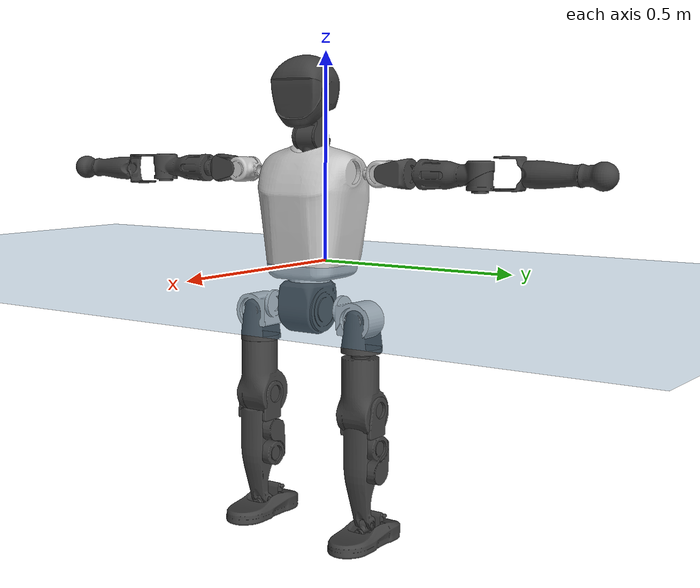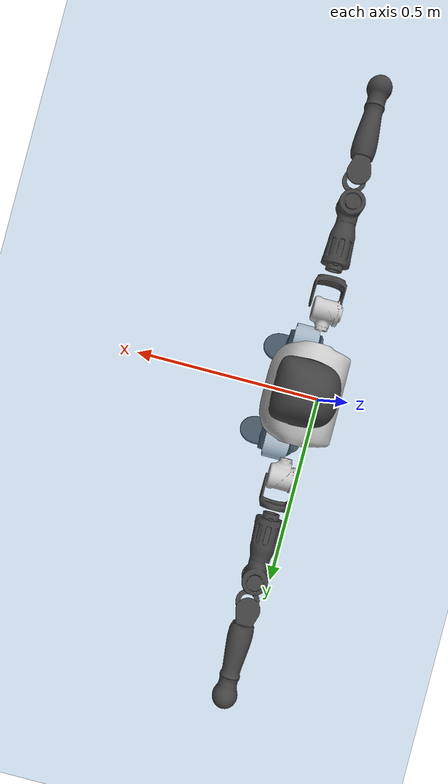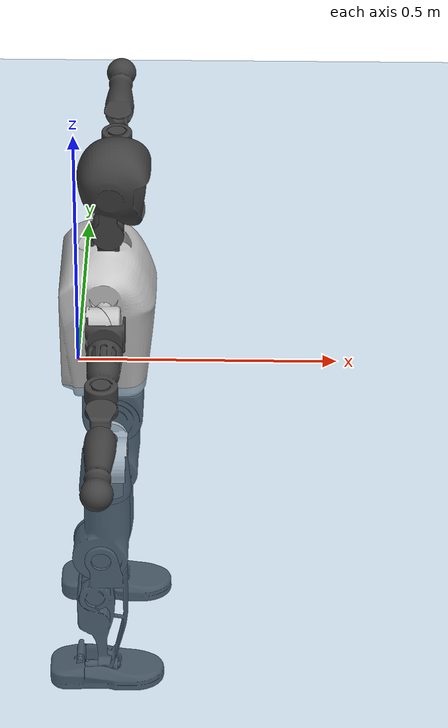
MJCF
<mujoco model="T1">
  <compiler angle="radian" assetdir="assets" balanceinertia="true" inertiafromgeom="false"/>

  <option timestep="0.005" density="1.2" viscosity="2e-05"/>

  <size nkey="1"/>

  <visual>
    <quality shadowsize="8192"/>
    <map shadowclip="0.5"/>
  </visual>

  <default>
    <default class="/">
      <joint armature="0.01" damping="0.01" frictionloss="0.1"/>
      <geom contype="0" conaffinity="0" group="1" solref="-1000 -80"/>
      <site size="0.01 0.005 0.005" group="5"/>
      <general forcelimited="true" biastype="affine" gainprm="25" biasprm="0 -25 -0.6"/>
      <default class="t1">
        <geom rgba="0.25 0.25 0.25 1"/>
        <default class="visual">
          <geom type="mesh" group="2"/>
        </default>
        <default class="collision">
          <geom group="3"/>
        </default>
        <default class="foot">
          <geom size="0.1115 0.05 0.015" type="box" condim="6" group="4" priority="1" solimp="0.015 1 0.015"/>
        </default>
        <default class="reward_collision_sphere">
          <geom group="5" rgba="1 0 0 1"/>
        </default>
      </default>
    </default>
  </default>

  <asset>
    <texture type="skybox" colorspace="auto" name="//unnamed_texture_0" builtin="gradient" rgb1="0.95 0.95 0.95" rgb2="0.95 0.95 0.95" width="100" height="600"/>
    <texture type="2d" colorspace="auto" name="texplane" builtin="checker" rgb1="0.345 0.575 0.748" rgb2="0.345 0.575 0.748" markrgb="1 1 1" width="512" height="512"/>
    <material name="MatPlane" class="/" texture="texplane" texuniform="true" texrepeat="2 2" specular="0.9"/>
    <mesh name="Trunk" class="/" file="Trunk.stl"/>
    <mesh name="H1" class="/" file="H1.stl"/>
    <mesh name="H2" class="/" file="H2.stl"/>
    <mesh name="AL1" class="/" file="AL1.stl"/>
    <mesh name="AL2" class="/" file="AL2.stl"/>
    <mesh name="AL3" class="/" file="AL3.stl"/>
    <mesh name="left_hand_link" class="/" file="left_hand_link.stl"/>
    <mesh name="AR1" class="/" file="AR1.stl"/>
    <mesh name="AR2" class="/" file="AR2.stl"/>
    <mesh name="AR3" class="/" file="AR3.stl"/>
    <mesh name="right_hand_link" class="/" file="right_hand_link.stl"/>
    <mesh name="Waist" class="/" file="Waist.stl"/>
    <mesh name="Hip_Pitch_Left" class="/" file="Hip_Pitch_Left.stl"/>
    <mesh name="Hip_Roll_Left" class="/" file="Hip_Roll_Left.stl"/>
    <mesh name="Hip_Yaw_Left" class="/" file="Hip_Yaw_Left.stl"/>
    <mesh name="Shank_Left" class="/" file="Shank_Left.stl"/>
    <mesh name="Ankle_Cross_Left" class="/" file="Ankle_Cross_Left.stl"/>
    <mesh name="left_foot_link" class="/" file="left_foot_link.stl"/>
    <mesh name="Hip_Pitch_Right" class="/" file="Hip_Pitch_Right.stl"/>
    <mesh name="Hip_Roll_Right" class="/" file="Hip_Roll_Right.stl"/>
    <mesh name="Hip_Yaw_Right" class="/" file="Hip_Yaw_Right.stl"/>
    <mesh name="Shank_Right" class="/" file="Shank_Right.stl"/>
    <mesh name="Ankle_Cross_Right" class="/" file="Ankle_Cross_Right.stl"/>
    <mesh name="right_foot_link" class="/" file="right_foot_link.stl"/>
  </asset>

  <worldbody>
    <geom name="floor" class="/" size="100 100 0.125" type="plane" group="0" material="MatPlane"/>
    <light name="toplight_shadow" class="/" pos="0 0 5" dir="0.0990148 0.0990148 -0.990148" type="directional" ambient="0.04 0.04 0.04" diffuse="0.55 0.55 0.55" specular="0.12 0.12 0.12"/>
    <light name="toplight_fill" class="/" pos="0 0 5" dir="0.0990148 0.0990148 -0.990148" type="directional" castshadow="false" ambient="0.04 0.04 0.04" diffuse="0.3 0.3 0.3" specular="0.08 0.08 0.08"/>
    <body name="trunk" childclass="t1" pos="4.18462e-07 -0.00120931 -0.0015025" quat="1 0.000140001 -0.000279917 9.15234e-05">
      <inertial pos="0.0549965 -0.00671359 0.0991545" quat="0.999987 -0.00199091 -0.00254192 -0.00406983" mass="18.2745" diaginertia="0.104428 0.51435 0.0507867"/>
      <joint name="//unnamed_joint_0" type="free" armature="0" damping="0" frictionloss="0"/>
      <geom name="//unnamed_geom_1" class="visual" rgba="0.76 0.76 0.76 1" mesh="Trunk"/>
      <geom name="//unnamed_geom_2" class="collision" size="0.0868675 0.115823 0.173735" pos="0.0615853 0 0.118515" type="box"/>
      <geom name="//unnamed_geom_3" class="reward_collision_sphere" size="0.133197" pos="0.0615853 0 0.0987624"/>
      <geom name="//unnamed_geom_4" class="reward_collision_sphere" size="0.0173735" pos="0.0615853 0.124156 0"/>
      <geom name="//unnamed_geom_5" class="reward_collision_sphere" size="0.0173735" pos="0.0615853 -0.124156 0"/>
      <geom name="//unnamed_geom_6" class="reward_collision_sphere" size="0.0173735" pos="0.0615853 0.15629 0.177772"/>
      <geom name="//unnamed_geom_7" class="reward_collision_sphere" size="0.0173735" pos="0.0615853 -0.15629 0.177772"/>
      <site name="imu" pos="0.00323021 -0.00111772 0.0101412" size="0.0115823"/>
      <camera name="track" pos="0 -2.92131 0" quat="0.707107 0.707107 0 0" mode="trackcom"/>
      <camera name="ego_camera" pos="0.125223 0 0.414802" quat="-0.5 -0.5 0.5 0.5"/>
      <body name="H1" pos="0.0623364 0.00388838 0.23538" quat="1 2.73525e-05 -2.91564e-05 0.000141372">
        <inertial pos="-0.00165119 -0.00886591 0.0543975" quat="0.77243 0.000127323 -0.00888275 0.635038" mass="0.699746" diaginertia="0.000287817 0.00150009 0.000138078"/>
        <joint name="AAHead_yaw" pos="0 0 0" axis="0.000212786 0.004178 0.999991" range="-1.56144 1.6688" armature="0.0104567" damping="0" frictionloss="0.157758"/>
        <geom name="//unnamed_geom_8" class="visual" mesh="H1"/>
        <body name="H2" pos="0.00145813 -0.00141866 0.064614" quat="1 -0.000537712 0.000173835 -0.000473123">
          <inertial pos="0.00579283 0.00692361 0.0960312" quat="0.988051 0.122573 -0.0538483 -0.0763674" mass="0.986967" diaginertia="0.00231683 0.0129228 0.00159257"/>
          <joint name="Head_pitch" pos="0 0 0" axis="-0.00779343 -0.999949 0.00645332" range="-1.24989 0.36573" armature="0.0120261" damping="0.00270422" frictionloss="0.124372"/>
          <geom name="//unnamed_geom_9" class="visual" mesh="H2"/>
          <geom name="//unnamed_geom_10" class="collision" size="0.0926586" pos="0.0102642 0 0.108639"/>
          <geom name="//unnamed_geom_11" class="reward_collision_sphere" size="0.104241" pos="0.0205284 0 0.0987624"/>
        </body>
      </body>
      <body name="AL1" pos="0.0610766 0.158142 0.216706" quat="0.999997 -0.000695078 0.000678769 0.00226617">
        <inertial pos="-0.00139588 0.0652403 -0.000969417" quat="0.49639 0.514977 -0.487782 0.500465" mass="0.805004" diaginertia="0.00156976 0.00798249 0.000278899"/>
        <joint name="Left_Shoulder_Pitch" pos="0 0 0" axis="0.00111623 0.999999 -0.000846284" range="-3.25724 1.14422" armature="0.0114362" damping="0" frictionloss="0.116661"/>
        <geom name="//unnamed_geom_12" class="visual" rgba="0.76 0.76 0.76 1" mesh="AL1"/>
        <body name="AL2" pos="0.00100097 0.0650679 0.00174183" quat="1 0.000173653 0.000498348 -0.000778567">
          <inertial pos="-0.00111901 0.0489459 -0.000534652" quat="0.491906 0.536982 -0.467222 0.50138" mass="0.255499" diaginertia="0.000471183 0.00234136 0.000159285"/>
          <joint name="Left_Shoulder_Roll" pos="0 0 0" axis="-0.999964 0.00417358 -0.00739871" range="-1.57009 1.74837" armature="0.01314" damping="0.00982159" frictionloss="0.102714"/>
          <geom name="//unnamed_geom_13" class="visual" mesh="AL2"/>
          <body name="AL3" pos="0.000588009 0.081412 -5.74267e-05" quat="1 0.000328373 -0.000396723 8.39356e-05">
            <inertial pos="0.00555935 0.126261 0.000798685" quat="0.704663 0.709502 9.45582e-06 -0.0075971" mass="1.46615" diaginertia="0.0136766 0.0836841 0.000570677"/>
            <joint name="Left_Elbow_Pitch" pos="0 0 0" axis="0.000473544 -1 -0.00062683" range="-2.22919 2.16339" armature="0.00993168" damping="0.00180978" frictionloss="0.112669"/>
            <geom name="//unnamed_geom_14" class="visual" mesh="AL3"/>
            <geom name="//unnamed_geom_15" class="collision" size="0.034747 0.0868675" pos="0 0.0730326 0" quat="0.707105 0.707108 0 0" type="cylinder"/>
            <geom name="//unnamed_geom_16" class="reward_collision_sphere" size="0.0416964"/>
            <body name="left_hand_link" pos="0.00043071 0.209718 0.00610395" quat="0.999999 -0.000462768 0.000989264 0.000509364">
              <inertial pos="0.00119362 0.157671 0.00248958" quat="0.703757 0.710404 0.00707556 -0.00112585" mass="0.52543" diaginertia="0.00973649 0.0536642 0.000196874"/>
              <joint name="Left_Elbow_Yaw" pos="0 0 0" axis="0.00268564 -0.00501793 0.999984" range="-2.33757 -0.0239099" armature="0.0117359" damping="0.0419422" frictionloss="0.097894"/>
              <geom name="//unnamed_geom_17" class="visual" mesh="left_hand_link"/>
              <geom name="//unnamed_geom_18" class="collision" size="0.034747 0.101345" pos="0 0.189885 0" quat="0.707105 0.707108 0 0" type="cylinder"/>
              <geom name="//unnamed_geom_19" class="reward_collision_sphere" size="0.0579116"/>
              <geom name="//unnamed_geom_20" class="reward_collision_sphere" size="0.0405381" pos="0 0.160672 0"/>
              <geom name="//unnamed_geom_21" class="reward_collision_sphere" size="0.0405381" pos="0 0.31404 0"/>
            </body>
          </body>
        </body>
      </body>
      <body name="AR1" pos="0.0599284 -0.154332 0.219338" quat="1 0.000508387 7.12045e-05 0.000314899">
        <inertial pos="0.00023098 -0.0656861 0.00540822" quat="0.505411 0.475398 -0.521275 0.496819" mass="0.791955" diaginertia="0.00157288 0.00871892 0.000271367"/>
        <joint name="Right_Shoulder_Pitch" pos="0 0 0" axis="-0.000876406 -0.999997 0.00222902" range="-1.21656 3.30615" armature="0.0126392" damping="0.0317211" frictionloss="0.150167"/>
        <geom name="//unnamed_geom_22" class="visual" rgba="0.76 0.76 0.76 1" mesh="AR1"/>
        <body name="AR2" pos="0.00566535 -0.0688399 0.00204314" quat="1 -0.000223675 -0.000198242 -0.000107063">
          <inertial pos="0.00459099 -0.0486544 0.00282311" quat="0.513723 0.504225 -0.490764 0.490913" mass="0.258985" diaginertia="0.000459646 0.00240239 0.000165974"/>
          <joint name="Right_Shoulder_Roll" pos="0 0 0" axis="-0.999918 0.0111396 -0.00627395" range="-1.74155 1.56487" armature="0.0115808" damping="0.0406866" frictionloss="0.127476"/>
          <geom name="//unnamed_geom_23" class="visual" mesh="AR2"/>
          <body name="AR3" pos="0.00106135 -0.0871803 -0.000945965" quat="1 0.000460837 0.000172808 -0.000184054">
            <inertial pos="0.00168879 -0.126538 -0.00201501" quat="0.708274 0.705903 0.00159729 0.00689361" mass="1.56151" diaginertia="0.0145786 0.0908795 0.000567377"/>
            <joint name="Right_Elbow_Pitch" pos="0 0 0" axis="0.00105273 0.999979 -0.00646256" range="-2.31742 2.29982" armature="0.0120711" damping="0.0059755" frictionloss="0.129248"/>
            <geom name="//unnamed_geom_24" class="visual" mesh="AR3"/>
            <geom name="//unnamed_geom_25" class="collision" size="0.034747 0.0868675" pos="0 -0.0730326 0" quat="0.707105 0.707108 0 0" type="cylinder"/>
            <geom name="//unnamed_geom_26" class="reward_collision_sphere" size="0.0416964"/>
            <body name="right_hand_link" pos="0.00304322 -0.217204 -0.0064652" quat="1 0.000145553 0.000754921 -0.000101723">
              <inertial pos="0.00111338 -0.161991 0.00163521" quat="0.700077 0.714035 -0.00600554 -0.00313082" mass="0.493492" diaginertia="0.00949953 0.055221 0.00020009"/>
              <joint name="Right_Elbow_Yaw" pos="0 0 0" axis="-0.000531942 0.00015197 1" range="-0.0317926 2.43106" armature="0.0104925" damping="0.0237684" frictionloss="0.0837805"/>
              <geom name="//unnamed_geom_27" class="visual" mesh="right_hand_link"/>
              <geom name="//unnamed_geom_28" class="collision" size="0.034747 0.101345" pos="0 -0.189885 0" quat="0.707105 0.707108 0 0" type="cylinder"/>
              <geom name="//unnamed_geom_29" class="reward_collision_sphere" size="0.0579116"/>
              <geom name="//unnamed_geom_30" class="reward_collision_sphere" size="0.0405381" pos="0 -0.160672 0"/>
              <geom name="//unnamed_geom_31" class="reward_collision_sphere" size="0.0405381" pos="0 -0.31404 0"/>
            </body>
          </body>
        </body>
      </body>
      <body name="Waist" pos="0.0666601 -0.0036968 -0.107859" quat="1 0.000225515 -0.000464145 -0.000430609">
        <inertial pos="0.00987403 0.00207383 0.00990481" quat="0.98376 -0.00175474 -0.179299 -0.00809741" mass="4.18069" diaginertia="0.00668208 0.0349469 0.00457338"/>
        <joint name="Waist" pos="0 0 0" axis="-0.00374158 0.00701179 0.999968" range="-1.55907 1.564" armature="0.0105151" damping="0.00995084" frictionloss="0.113511"/>
        <geom name="//unnamed_geom_32" class="visual" mesh="Waist"/>
        <body name="Hip_Pitch_Left" pos="0.0032474 0.154026 0.00449612" quat="0.999999 0.000498823 -0.00136896 6.01299e-05">
          <inertial pos="-0.00020028 -0.0138859 -0.0198836" quat="0.975799 0.218255 0.0132959 0.00232711" mass="1.47231" diaginertia="0.00203342 0.00947154 0.00116632"/>
          <joint name="Left_Hip_Pitch" pos="0 0 0" axis="0.00250398 0.999989 0.00391262" range="-1.79599 1.46415" armature="0.00813511" damping="0.0100366" frictionloss="0.123373"/>
          <geom name="//unnamed_geom_33" class="visual" rgba="0.76 0.76 0.76 1" mesh="Hip_Pitch_Left"/>
          <body name="Hip_Roll_Left" pos="-0.00516549 -0.000232493 -0.0188446" quat="0.999999 0.000451064 0.00109436 -0.000351703">
            <inertial pos="0.00122986 0.00078501 -0.0527793" quat="0.702237 -0.0177424 0.0212463 0.711405" mass="0.652689" diaginertia="0.00210498 0.0102229 0.000486902"/>
            <joint name="Left_Hip_Roll" pos="0 0 0" axis="-0.999801 0.0198442 -0.00186747" range="-1.5642 0.243672" armature="0.00869748" damping="0" frictionloss="0.119405"/>
            <geom name="//unnamed_geom_34" class="visual" mesh="Hip_Roll_Left"/>
            <geom name="//unnamed_geom_35" class="reward_collision_sphere" size="0.0637028"/>
            <body name="Hip_Yaw_Left" pos="0.00197796 -0.000960655 -0.0886044" quat="0.999999 0.000593979 -0.000301239 0.00111912">
              <inertial pos="-0.00333613 0.00169026 -0.090452" quat="0.696349 -0.0254566 -0.0241441 0.716845" mass="3.26285" diaginertia="0.028387 0.178577 0.00236041"/>
              <joint name="Left_Hip_Yaw" pos="0 0 0" axis="-0.00891131 -0.00360378 -0.999954" range="-0.992425 0.91198" armature="0.0116969" damping="0.00189592" frictionloss="0.119217"/>
              <geom name="//unnamed_geom_36" class="visual" mesh="Hip_Yaw_Left"/>
              <geom name="//unnamed_geom_37" class="collision" size="0.0579116 0.0926586" type="cylinder"/>
              <body name="Shank_Left" pos="-0.0207035 0.000475758 -0.124275" quat="1 9.17272e-05 0.000418152 -0.000510263">
                <inertial pos="-0.00822109 -0.00357878 -0.12743" quat="0.99766 0.000768619 -0.0226769 0.0644972" mass="2.88565" diaginertia="0.0385904 0.219773 0.0017661"/>
                <joint name="Left_Knee_Pitch" pos="0 0 0" axis="-0.00511137 0.999807 -0.0189461" range="2.33382e-05 2.33057" armature="0.012031" damping="0.00220501" frictionloss="0.103168"/>
                <geom name="//unnamed_geom_38" class="visual" mesh="Shank_Left"/>
                <geom name="//unnamed_geom_39" class="collision" size="0.0579116 0.0868675" pos="0 0 -0.118515" type="cylinder"/>
                <geom name="//unnamed_geom_40" class="reward_collision_sphere" size="0.0752851"/>
                <body name="Ankle_Cross_Left" pos="0.00337855 0.000803318 -0.281847" quat="0.999999 -0.00119751 0.000232803 -0.000356644">
                  <inertial pos="-0.0042025 -0.00244952 -0.0083396" quat="0.447083 0.554516 0.539685 0.448743" mass="0.10602" diaginertia="3.05928e-05 0.000168791 1.0365e-05"/>
                  <joint name="Left_Ankle_Pitch" pos="0 0 0" axis="0.00026942 1 0.000269669" stiffness="0.00594538" range="-0.976048 0.392716" armature="0.0116749" damping="0" frictionloss="0.125753"/>
                  <geom name="//unnamed_geom_41" class="visual" mesh="Ankle_Cross_Left"/>
                  <body name="left_foot_link" pos="-0.00119573 0.00191232 -0.0179177" quat="1 -5.194e-05 2.6273e-05 -4.20358e-05">
                    <inertial pos="0.00251932 0.000779543 -0.00542037" quat="-0.00711969 0.617083 0.000520711 0.786866" mass="1.14488" diaginertia="0.00342924 0.016545 0.00197243"/>
                    <joint name="Left_Ankle_Roll" pos="0 0 0" axis="-0.999904 -0.00721467 0.0118031" range="-0.417849 0.443452" armature="0.0111358" damping="0" frictionloss="0.117973"/>
                    <geom name="//unnamed_geom_42" class="visual" mesh="left_foot_link"/>
                    <geom name="left_foot" class="foot" size="0.120887 0.0432493 0.0191052" pos="0.0102642 0 -0.0148144"/>
                    <geom name="//unnamed_geom_44" class="reward_collision_sphere" size="0.0602281" pos="0.0102642 0 -0.0148144"/>
                    <geom name="//unnamed_geom_45" class="reward_collision_sphere" size="0.034747" pos="0.0975101 -0.033595 -0.0148144"/>
                    <geom name="//unnamed_geom_46" class="reward_collision_sphere" size="0.034747" pos="-0.0718495 -0.033595 -0.0148144"/>
                    <site name="left_foot" class="foot" pos="0.0102642 0 -0.0148144" size="0.0115823"/>
                  </body>
                </body>
              </body>
            </body>
          </body>
        </body>
        <body name="Hip_Pitch_Right" pos="-0.00281745 -0.152954 0.00172269" quat="0.999997 -0.00116388 -0.000248904 0.0021531">
          <inertial pos="0.00382626 0.00936647 -0.0221024" quat="0.97265 -0.231319 0.0169431 -0.0125421" mass="1.55101" diaginertia="0.00200823 0.00925366 0.00124717"/>
          <joint name="Right_Hip_Pitch" pos="0 0 0" axis="0.00961719 -0.999943 0.00457717" stiffness="0.00506657" range="-1.57109 1.92924" armature="0.0126422" damping="0.00651109" frictionloss="0.111449"/>
          <geom name="//unnamed_geom_47" class="visual" rgba="0.76 0.76 0.76 1" mesh="Hip_Pitch_Right"/>
          <body name="Hip_Roll_Right" pos="-0.00586168 0.00109773 -0.0156697" quat="1 -5.38226e-05 -1.08993e-05 3.50067e-05">
            <inertial pos="0.000451525 0.00133903 -0.0544081" quat="0.718392 0.00967908 0.0144485 0.695421" mass="0.602556" diaginertia="0.00197932 0.00979171 0.000499342"/>
            <joint name="Right_Hip_Roll" pos="0 0 0" axis="-0.999913 0.00360299 -0.0126514" range="-0.340583 1.52031" armature="0.0111452" damping="0.00128644" frictionloss="0.11423"/>
            <geom name="//unnamed_geom_48" class="visual" mesh="Hip_Roll_Right"/>
            <geom name="//unnamed_geom_49" class="reward_collision_sphere" size="0.0637028"/>
            <body name="Hip_Yaw_Right" pos="3.33136e-05 -0.00194283 -0.0780834" quat="0.999999 0.000956329 -0.000630615 0.000448479">
              <inertial pos="-0.00731925 0.000279917 -0.0826773" quat="0.719551 -0.0323831 -0.034524 0.692824" mass="3.55071" diaginertia="0.0305719 0.170694 0.00252485"/>
              <joint name="Right_Hip_Yaw" pos="0 0 0" axis="0.0300749 -0.0211206 -0.999324" range="-0.965761 1.03791" armature="0.00914498" damping="0.0403284" frictionloss="0.117619"/>
              <geom name="//unnamed_geom_50" class="visual" mesh="Hip_Yaw_Right"/>
              <geom name="//unnamed_geom_51" class="collision" size="0.0579116 0.0926586" type="cylinder"/>
              <body name="Shank_Right" pos="-0.0120638 -0.00204782 -0.13608" quat="1 0.000150182 0.000347627 2.81794e-05">
                <inertial pos="-0.00537717 -0.00139852 -0.118074" quat="0.999168 0.00992025 -0.0228644 -0.0322892" mass="2.51739" diaginertia="0.0357156 0.213864 0.00166089"/>
                <joint name="Right_Knee_Pitch" pos="0 0 0" axis="0.0112206 -0.999866 0.0118842" range="-2.44364 0.0147747" armature="0.00810734" damping="0.00439523" frictionloss="0.117985"/>
                <geom name="//unnamed_geom_52" class="visual" mesh="Shank_Right"/>
                <geom name="//unnamed_geom_53" class="collision" size="0.0579116 0.0868675" pos="0 0 -0.118515" type="cylinder"/>
                <geom name="//unnamed_geom_54" class="reward_collision_sphere" size="0.0752851"/>
                <body name="Ankle_Cross_Right" pos="0.00080561 0.00171208 -0.273413" quat="1 3.65561e-05 0.000304437 -0.000190559">
                  <inertial pos="-0.00382607 0.00145732 -0.00782334" quat="0.43839 0.553877 0.552996 0.441848" mass="0.114593" diaginertia="3.17667e-05 0.000163801 1.0699e-05"/>
                  <joint name="Right_Ankle_Pitch" pos="0 0 0" axis="0.000522447 -0.999999 -0.00119385" stiffness="0.020769" range="-0.268876 0.955651" armature="0.0117245" damping="0.018147" frictionloss="0.102832"/>
                  <geom name="//unnamed_geom_55" class="visual" mesh="Ankle_Cross_Right"/>
                  <body name="right_foot_link" pos="-0.00518428 -0.00130753 -0.00966306" quat="1 -2.8983e-06 5.17254e-05 0.000101434">
                    <inertial pos="0.00618685 -0.00195719 -0.00976437" quat="0.000621348 0.620692 0.0033087 0.784047" mass="1.06864" diaginertia="0.00314315 0.0166315 0.00213148"/>
                    <joint name="Right_Ankle_Roll" pos="0 0 0" axis="-0.999961 0.000852853 0.0087651" range="-0.324802 0.443872" armature="0.0128662" damping="0.0315934" frictionloss="0.129275"/>
                    <geom name="//unnamed_geom_56" class="visual" mesh="right_foot_link"/>
                    <geom name="right_foot" class="foot" size="0.0909106 0.0534569 0.0165416" pos="0.0102642 0 -0.0148144"/>
                    <geom name="//unnamed_geom_58" class="reward_collision_sphere" size="0.0463293"/>
                    <geom name="//unnamed_geom_59" class="reward_collision_sphere" size="0.034747" pos="0.0102642 0 -0.0148144"/>
                    <geom name="//unnamed_geom_60" class="reward_collision_sphere" size="0.034747" pos="0.0975101 0.033595 -0.0148144"/>
                    <geom name="//unnamed_geom_61" class="reward_collision_sphere" size="0.034747" pos="-0.0718495 0.033595 -0.0148144"/>
                    <site name="right_foot" class="foot" pos="0.0102642 0 -0.0148144" size="0.0115823"/>
                  </body>
                </body>
              </body>
            </body>
          </body>
        </body>
      </body>
    </body>
  </worldbody>

  <contact>
    <pair class="/" geom1="floor" geom2="left_foot" name="//unnamed_contact_0"/>
    <pair class="/" geom1="floor" geom2="right_foot" name="//unnamed_contact_1"/>
  </contact>

  <actuator>
    <general name="AAHead_yaw" class="/" joint="AAHead_yaw" forcerange="-8.71085 8.71085" gainprm="30.7259" biasprm="0 -30.7259 -0.638467"/>
    <general name="Head_pitch" class="/" joint="Head_pitch" forcerange="-8.15476 8.15476" gainprm="30.7259" biasprm="0 -30.7259 -0.638467"/>
    <general name="Left_Shoulder_Pitch" class="/" joint="Left_Shoulder_Pitch" forcerange="-21.3331 21.3331" gainprm="30.7259" biasprm="0 -30.7259 -0.638467"/>
    <general name="Left_Shoulder_Roll" class="/" joint="Left_Shoulder_Roll" forcerange="-19.4208 19.4208" gainprm="30.7259" biasprm="0 -30.7259 -0.638467"/>
    <general name="Left_Elbow_Pitch" class="/" joint="Left_Elbow_Pitch" forcerange="-20.3094 20.3094" gainprm="30.7259" biasprm="0 -30.7259 -0.638467"/>
    <general name="Left_Elbow_Yaw" class="/" joint="Left_Elbow_Yaw" forcerange="-19.7167 19.7167" gainprm="30.7259" biasprm="0 -30.7259 -0.638467"/>
    <general name="Right_Shoulder_Pitch" class="/" joint="Right_Shoulder_Pitch" forcerange="-22.3543 22.3543" gainprm="30.7259" biasprm="0 -30.7259 -0.638467"/>
    <general name="Right_Shoulder_Roll" class="/" joint="Right_Shoulder_Roll" forcerange="-21.1748 21.1748" gainprm="30.7259" biasprm="0 -30.7259 -0.638467"/>
    <general name="Right_Elbow_Pitch" class="/" joint="Right_Elbow_Pitch" forcerange="-16.6931 16.6931" gainprm="30.7259" biasprm="0 -30.7259 -0.638467"/>
    <general name="Right_Elbow_Yaw" class="/" joint="Right_Elbow_Yaw" forcerange="-21.911 21.911" gainprm="30.7259" biasprm="0 -30.7259 -0.638467"/>
    <general name="Waist" class="/" joint="Waist" forcerange="-36.6378 36.6378" gainprm="30.7259" biasprm="0 -30.7259 -0.638467"/>
    <general name="Left_Hip_Pitch" class="/" joint="Left_Hip_Pitch" forcerange="-53.6579 53.6579" gainprm="30.7259" biasprm="0 -30.7259 -0.638467"/>
    <general name="Left_Hip_Roll" class="/" joint="Left_Hip_Roll" forcerange="-31.0627 31.0627" gainprm="30.7259" biasprm="0 -30.7259 -0.638467"/>
    <general name="Left_Hip_Yaw" class="/" joint="Left_Hip_Yaw" forcerange="-39.2993 39.2993" gainprm="30.7259" biasprm="0 -30.7259 -0.638467"/>
    <general name="Left_Knee_Pitch" class="/" joint="Left_Knee_Pitch" forcerange="-75.0251 75.0251" gainprm="30.7259" biasprm="0 -30.7259 -0.638467"/>
    <general name="Left_Ankle_Pitch" class="/" joint="Left_Ankle_Pitch" forcerange="-23.3412 23.3412" gainprm="30.7259" biasprm="0 -30.7259 -0.638467"/>
    <general name="Left_Ankle_Roll" class="/" joint="Left_Ankle_Roll" forcerange="-14.567 14.567" gainprm="30.7259" biasprm="0 -30.7259 -0.638467"/>
    <general name="Right_Hip_Pitch" class="/" joint="Right_Hip_Pitch" forcerange="-51.8903 51.8903" gainprm="30.7259" biasprm="0 -30.7259 -0.638467"/>
    <general name="Right_Hip_Roll" class="/" joint="Right_Hip_Roll" forcerange="-34.891 34.891" gainprm="30.7259" biasprm="0 -30.7259 -0.638467"/>
    <general name="Right_Hip_Yaw" class="/" joint="Right_Hip_Yaw" forcerange="-27.1823 27.1823" gainprm="30.7259" biasprm="0 -30.7259 -0.638467"/>
    <general name="Right_Knee_Pitch" class="/" joint="Right_Knee_Pitch" forcerange="-69.3757 69.3757" gainprm="30.7259" biasprm="0 -30.7259 -0.638467"/>
    <general name="Right_Ankle_Pitch" class="/" joint="Right_Ankle_Pitch" forcerange="-21.164 21.164" gainprm="30.7259" biasprm="0 -30.7259 -0.638467"/>
    <general name="Right_Ankle_Roll" class="/" joint="Right_Ankle_Roll" forcerange="-17.9582 17.9582" gainprm="30.7259" biasprm="0 -30.7259 -0.638467"/>
  </actuator>

  <sensor>
    <gyro site="imu" name="imu_angular_velocity"/>
    <velocimeter site="imu" name="imu_linear_velocity"/>
    <framelinvel objtype="site" objname="left_foot" name="left_foot_global_linear_velocity"/>
    <framelinvel objtype="site" objname="right_foot" name="right_foot_global_linear_velocity"/>
  </sensor>

  <keyframe>
    <key name="home" qpos="0 0 0.6385 1 0 0 0 0 0 0 1.4 0 -0.4 0 -1.4 0 0.4 0 -0.4 0 0 0.8 -0.4 0 0.4 0 0 -0.8 0.4 0"/>
  </keyframe>
</mujoco>
